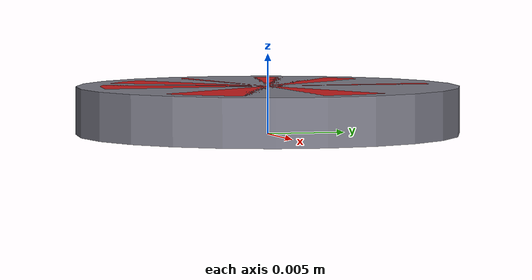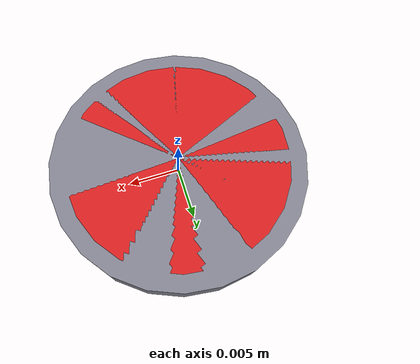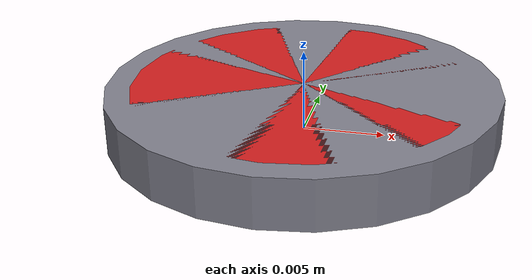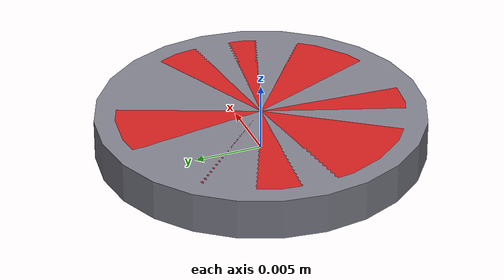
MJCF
<mujoco model="Switch_23">
  <asset>
    <material name="Switch_23_base" rgba="0.5 0.5 0.55 1"/>
    <material name="Switch_23_button" rgba="0.82 0.12 0.12 1"/>
  </asset>
  <worldbody>
    <body name="Switch_23">
      <geom name="Switch_23_base" type="cylinder"
            pos="0 0 0.0015" size="0.012 0.0015"
            material="Switch_23_base"/>
      <geom name="Switch_23_button" type="cylinder"
            pos="0 0 0.0015" size="0.0105 0.0015"
            material="Switch_23_button"/>
    </body>
  </worldbody>
</mujoco>
